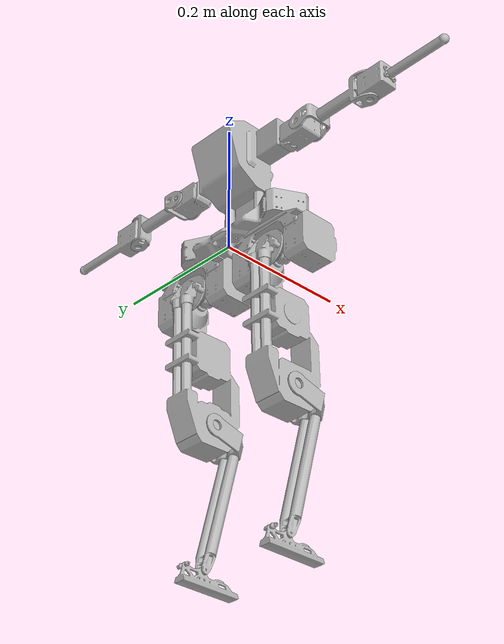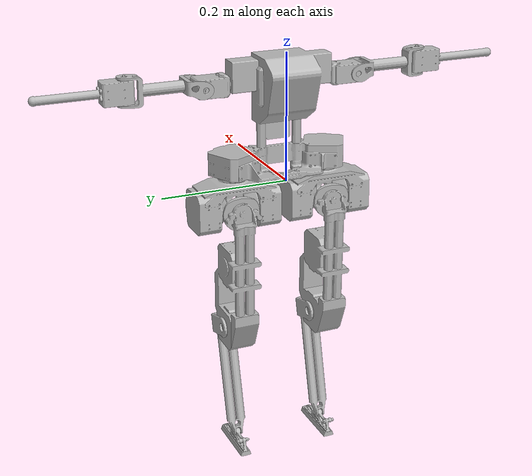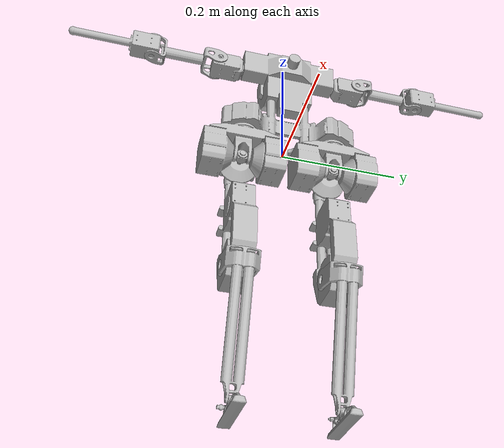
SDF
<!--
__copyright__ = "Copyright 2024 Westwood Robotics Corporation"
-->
<sdf version='1.6'>
  <model name='bruce'>

    <link name='base_link'>
      <inertial>
        <pose>0.022596 -0.000113 0.061401 0 -0 0</pose>
        <mass>1.31689</mass>
        <inertia>
          <ixx>0.0133543</ixx>
          <ixy>-3.36e-06</ixy>
          <ixz>0.00182725</ixz>
          <iyy>0.0102363</iyy>
          <iyz>-1.163e-05</iyz>
          <izz>0.005471</izz>
        </inertia>
      </inertial>
      <collision name='base_link_collision'>
        <pose>0 0 0 0 -0 0</pose>
        <geometry>
          <mesh>
            <scale>1 1 1</scale>
            <uri>model://bruce/meshes/base_link.STL</uri>
          </mesh>
        </geometry>
      </collision>
      <visual name='base_link_visual'>
        <pose>0 0 0 0 -0 0</pose>
        <geometry>
          <mesh>
            <scale>1 1 1</scale>
            <uri>model://bruce/meshes/base_link.STL</uri>
          </mesh>
        </geometry>
      </visual>
    </link>

    <joint name='hip_yaw_r' type='revolute'>
      <pose relative_to='base_link'>0.029216 -0.075856 -0.039765 0 0 -1.5708</pose>
      <parent>base_link</parent>
      <child>hip_yaw_link_r</child>
      <axis>
        <xyz>0 0 1</xyz>
        <limit>
          <lower>-3.1415</lower>
          <upper>3.1415</upper>
          <effort>1000</effort>
          <velocity>1000</velocity>
        </limit>
        <dynamics>
          <damping>0.002</damping>
          <spring_reference>0</spring_reference>
          <spring_stiffness>0</spring_stiffness>
        </dynamics>
      </axis>
    </joint>
    <link name='hip_yaw_link_r'>
      <pose relative_to='hip_yaw_r'>0 0 0 0 -0 0</pose>
      <inertial>
        <pose>3e-06 -0.000248 0.005224 0 -0 0</pose>
        <mass>0.637563</mass>
        <inertia>
          <ixx>0.00048541</ixx>
          <ixy>1.12e-06</ixy>
          <ixz>1.74e-06</ixz>
          <iyy>0.00161689</iyy>
          <iyz>-7.02e-06</iyz>
          <izz>0.00152129</izz>
        </inertia>
      </inertial>
      <collision name='hip_yaw_link_r_collision'>
        <pose>0 0 0 0 -0 0</pose>
        <geometry>
          <mesh>
            <scale>1 1 1</scale>
            <uri>model://bruce/meshes/hip_yaw_link_r.STL</uri>
          </mesh>
        </geometry>
      </collision>
      <visual name='hip_yaw_link_r_visual'>
        <pose>0 0 0 0 -0 0</pose>
        <geometry>
          <mesh>
            <scale>1 1 1</scale>
            <uri>model://bruce/meshes/hip_yaw_link_r.STL</uri>
          </mesh>
        </geometry>
      </visual>
    </link>
    <joint name='hip_roll_r' type='revolute'>
      <pose relative_to='hip_yaw_link_r'>0 0 0 -1.5708 1.5708 0</pose>
      <parent>hip_yaw_link_r</parent>
      <child>hip_roll_link_r</child>
      <axis>
        <xyz>0 0 1</xyz>
        <limit>
          <lower>-3.1415</lower>
          <upper>3.1415</upper>
          <effort>1000</effort>
          <velocity>1000</velocity>
        </limit>
        <dynamics>
          <damping>0.002</damping>
          <spring_reference>0</spring_reference>
          <spring_stiffness>0</spring_stiffness>
        </dynamics>
      </axis>
    </joint>
    <link name='hip_roll_link_r'>
      <pose relative_to='hip_roll_r'>0 0 0 0 -0 0</pose>
      <inertial>
        <pose>-0 0 7e-06 0 -0 0</pose>
        <mass>0.05</mass>
        <inertia>
          <ixx>1e-05</ixx>
          <ixy>1e-20</ixy>
          <ixz>-1e-20</ixz>
          <iyy>1e-05</iyy>
          <iyz>1e-20</iyz>
          <izz>1e-05</izz>
        </inertia>
      </inertial>
      <collision name='hip_roll_link_r_collision'>
        <pose>0 0 0 0 -0 0</pose>
        <geometry>
          <mesh>
            <scale>1 1 1</scale>
            <uri>model://bruce/meshes/hip_roll_link_r.STL</uri>
          </mesh>
        </geometry>
      </collision>
      <visual name='hip_roll_link_r_visual'>
        <pose>0 0 0 0 -0 0</pose>
        <geometry>
          <mesh>
            <scale>1 1 1</scale>
            <uri>model://bruce/meshes/hip_roll_link_r.STL</uri>
          </mesh>
        </geometry>
      </visual>
    </link>
    <joint name='hip_pitch_r' type='revolute'>
      <pose relative_to='hip_roll_link_r'>0 0 0 1.5708 -0 0</pose>
      <parent>hip_roll_link_r</parent>
      <child>hip_pitch_link_r</child>
      <axis>
        <xyz>0 0 1</xyz>
        <limit>
          <lower>-3.1415</lower>
          <upper>3.1415</upper>
          <effort>1000</effort>
          <velocity>1000</velocity>
        </limit>
        <dynamics>
          <damping>0.002</damping>
          <spring_reference>0</spring_reference>
          <spring_stiffness>0</spring_stiffness>
        </dynamics>
      </axis>
    </joint>
    <link name='hip_pitch_link_r'>
      <pose relative_to='hip_pitch_r'>0 0 0 0 -0 0</pose>
      <inertial>
        <pose>0.140714 -0.008682 0.001674 0 -0 0</pose>
        <mass>0.72849</mass>
        <inertia>
          <ixx>0.00050614</ixx>
          <ixy>-0.00065644</ixy>
          <ixz>0.00019343</ixz>
          <iyy>0.0179243</iyy>
          <iyz>1.68e-06</iyz>
          <izz>0.0181973</izz>
        </inertia>
      </inertial>
      <collision name='hip_pitch_link_r_collision'>
        <pose>0 0 0 0 -0 0</pose>
        <geometry>
          <mesh>
            <scale>1 1 1</scale>
            <uri>model://bruce/meshes/hip_pitch_link_r.STL</uri>
          </mesh>
        </geometry>
      </collision>
      <visual name='hip_pitch_link_r_visual'>
        <pose>0 0 0 0 -0 0</pose>
        <geometry>
          <mesh>
            <scale>1 1 1</scale>
            <uri>model://bruce/meshes/hip_pitch_link_r.STL</uri>
          </mesh>
        </geometry>
      </visual>
    </link>
    <joint name='knee_pitch_r' type='revolute'>
      <pose relative_to='hip_pitch_link_r'>0.204949 0 0 0 -0 0</pose>
      <parent>hip_pitch_link_r</parent>
      <child>knee_pitch_link_r</child>
      <axis>
        <xyz>0 0 1</xyz>
        <limit>
          <lower>-3.1415</lower>
          <upper>3.1415</upper>
          <effort>1000</effort>
          <velocity>1000</velocity>
        </limit>
        <dynamics>
          <damping>0.002</damping>
          <spring_reference>0</spring_reference>
          <spring_stiffness>0</spring_stiffness>
        </dynamics>
      </axis>
    </joint>
    <link name='knee_pitch_link_r'>
      <pose relative_to='knee_pitch_r'>0 0 0 0 -0 0</pose>
      <inertial>
        <pose>0.072931 0.017464 0.002164 0 -0 0</pose>
        <mass>0.0956654</mass>
        <inertia>
          <ixx>0.00010962</ixx>
          <ixy>5.276e-05</ixy>
          <ixz>1.568e-05</ixz>
          <iyy>0.00101941</iyy>
          <iyz>-6.68e-06</iyz>
          <izz>0.00108317</izz>
        </inertia>
      </inertial>
      <collision name='knee_pitch_link_r_collision'>
        <pose>0 0 0 0 -0 0</pose>
        <geometry>
          <mesh>
            <scale>1 1 1</scale>
            <uri>model://bruce/meshes/knee_pitch_link_r.STL</uri>
          </mesh>
        </geometry>
      </collision>
      <visual name='knee_pitch_link_r_visual'>
        <pose>0 0 0 0 -0 0</pose>
        <geometry>
          <mesh>
            <scale>1 1 1</scale>
            <uri>model://bruce/meshes/knee_pitch_link_r.STL</uri>
          </mesh>
        </geometry>
      </visual>
    </link>
    <joint name='ankle_pitch_r' type='revolute'>
      <pose relative_to='knee_pitch_link_r'>0.199881 0 0 0 -0 0</pose>
      <parent>knee_pitch_link_r</parent>
      <child>ankle_pitch_link_r</child>
      <axis>
        <xyz>0 0 1</xyz>
        <limit>
          <lower>-3.1415</lower>
          <upper>3.1415</upper>
          <effort>1000</effort>
          <velocity>1000</velocity>
        </limit>
        <dynamics>
          <damping>0.002</damping>
          <spring_reference>0</spring_reference>
          <spring_stiffness>0</spring_stiffness>
        </dynamics>
      </axis>
    </joint>
    <link name='ankle_pitch_link_r'>
      <pose relative_to='ankle_pitch_r'>0 0 0 0 -0 0</pose>
      <inertial>
        <pose>0.012078 0.001975 0.000295 0 -0 0</pose>
        <mass>0.0276265</mass>
        <inertia>
          <ixx>2.043e-05</ixx>
          <ixy>2.87e-06</ixy>
          <ixz>-3e-08</ixz>
          <iyy>6.2e-06</iyy>
          <iyz>-2.4e-07</iyz>
          <izz>2.588e-05</izz>
        </inertia>
      </inertial>
      <collision name='ankle_pitch_link_r_collision'>
        <pose>0 0 0 0 -0 0</pose>
        <geometry>
          <mesh>
            <scale>1 1 1</scale>
            <uri>model://bruce/meshes/ankle_pitch_link_r.STL</uri>
          </mesh>
        </geometry>
      </collision>
      <collision name='toe_right_collision'>
        <pose>0.0250 0.05 0 0 -0 0</pose>
        <geometry>
          <sphere>
            <radius>0.005</radius>
          </sphere>
        </geometry>
        <surface>
          <friction>
            <ode>
              <mu>10</mu>
              <mu2>10</mu2>
            </ode>
          </friction>
          <contact>
            <ode>
              <min_depth>0.003</min_depth>
              <kp>1e7</kp>
              <kd>100</kd>
            </ode>
          </contact>
        </surface>
      </collision>
      <sensor name='0' type='contact'>
        <plugin name="right_toe_contact_plugin" filename="bruce_gazebo_contact.so"/>
        <contact>
          <collision>toe_right_collision</collision>
        </contact>
      </sensor>
      <collision name='heel_right_collision'>
        <pose>0.0250 -0.035 0 0 -0 0</pose>
        <geometry>
          <sphere>
            <radius>0.005</radius>
          </sphere>
        </geometry>
        <surface>
          <friction>
            <ode>
              <mu>10</mu>
              <mu2>10</mu2>
            </ode>
          </friction>
          <contact>
            <ode>
              <min_depth>0.003</min_depth>
              <kp>1e7</kp>
              <kd>100</kd>
            </ode>
          </contact>
        </surface>
      </collision>
      <sensor name='1' type='contact'>
        <plugin name="right_heel_contact_plugin" filename="bruce_gazebo_contact.so"/>
        <contact>
          <collision>heel_right_collision</collision>
        </contact>
      </sensor>
      <visual name='ankle_pitch_link_r_visual'>
        <pose>0 0 0 0 -0 0</pose>
        <geometry>
          <mesh>
            <scale>1 1 1</scale>
            <uri>model://bruce/meshes/ankle_pitch_link_r.STL</uri>
          </mesh>
        </geometry>
      </visual>
    </link>

    <joint name='hip_yaw_l' type='revolute'>
      <pose relative_to='base_link'>0.029216 0.075856 -0.039765 0 0 -1.5708</pose>
      <parent>base_link</parent>
      <child>hip_yaw_link_l</child>
      <axis>
        <xyz>0 0 1</xyz>
        <limit>
          <lower>-3.1415</lower>
          <upper>3.1415</upper>
          <effort>1000</effort>
          <velocity>1000</velocity>
        </limit>
        <dynamics>
          <damping>0.002</damping>
          <spring_reference>0</spring_reference>
          <spring_stiffness>0</spring_stiffness>
        </dynamics>
      </axis>
    </joint>
    <link name='hip_yaw_link_l'>
      <pose relative_to='hip_yaw_l'>0 0 0 0 -0 0</pose>
      <inertial>
        <pose>0 -0.000208 0.00528 0 -0 0</pose>
        <mass>0.637386</mass>
        <inertia>
          <ixx>0.0004852</ixx>
          <ixy>0</ixy>
          <ixz>-1.6e-07</ixz>
          <iyy>0.0016181</iyy>
          <iyz>-7.5e-06</iyz>
          <izz>0.00152105</izz>
        </inertia>
      </inertial>
      <collision name='hip_yaw_link_l_collision'>
        <pose>0 0 0 0 -0 0</pose>
        <geometry>
          <mesh>
            <scale>1 1 1</scale>
            <uri>model://bruce/meshes/hip_yaw_link_l.STL</uri>
          </mesh>
        </geometry>
      </collision>
      <visual name='hip_yaw_link_l_visual'>
        <pose>0 0 0 0 -0 0</pose>
        <geometry>
          <mesh>
            <scale>1 1 1</scale>
            <uri>model://bruce/meshes/hip_yaw_link_l.STL</uri>
          </mesh>
        </geometry>
      </visual>
    </link>
    <joint name='hip_roll_l' type='revolute'>
      <pose relative_to='hip_yaw_link_l'>0 0 0 -1.57079 1.5708 0</pose>
      <parent>hip_yaw_link_l</parent>
      <child>hip_roll_link_l</child>
      <axis>
        <xyz>0 0 1</xyz>
        <limit>
          <lower>-3.1415</lower>
          <upper>3.1415</upper>
          <effort>1000</effort>
          <velocity>1000</velocity>
        </limit>
        <dynamics>
          <damping>0.002</damping>
          <spring_reference>0</spring_reference>
          <spring_stiffness>0</spring_stiffness>
        </dynamics>
      </axis>
    </joint>
    <link name='hip_roll_link_l'>
      <pose relative_to='hip_roll_l'>0 0 0 0 -0 0</pose>
      <inertial>
        <pose>-0 0 7e-06 0 -0 0</pose>
        <mass>0.05</mass>
        <inertia>
          <ixx>1e-05</ixx>
          <ixy>1e-20</ixy>
          <ixz>-1e-20</ixz>
          <iyy>1e-05</iyy>
          <iyz>1e-20</iyz>
          <izz>1e-05</izz>
        </inertia>
      </inertial>
      <collision name='hip_roll_link_l_collision'>
        <pose>0 0 0 0 -0 0</pose>
        <geometry>
          <mesh>
            <scale>1 1 1</scale>
            <uri>model://bruce/meshes/hip_roll_link_l.STL</uri>
          </mesh>
        </geometry>
      </collision>
      <visual name='hip_roll_link_l_visual'>
        <pose>0 0 0 0 -0 0</pose>
        <geometry>
          <mesh>
            <scale>1 1 1</scale>
            <uri>model://bruce/meshes/hip_roll_link_l.STL</uri>
          </mesh>
        </geometry>
      </visual>
    </link>
    <joint name='hip_pitch_l' type='revolute'>
      <pose relative_to='hip_roll_link_l'>0 0 0 1.5708 -0 0</pose>
      <parent>hip_roll_link_l</parent>
      <child>hip_pitch_link_l</child>
      <axis>
        <xyz>0 0 1</xyz>
        <limit>
          <lower>-3.1415</lower>
          <upper>3.1415</upper>
          <effort>1000</effort>
          <velocity>1000</velocity>
        </limit>
        <dynamics>
          <damping>0.002</damping>
          <spring_reference>0</spring_reference>
          <spring_stiffness>0</spring_stiffness>
        </dynamics>
      </axis>
    </joint>
    <link name='hip_pitch_link_l'>
      <pose relative_to='hip_pitch_l'>0 0 0 0 -0 0</pose>
      <inertial>
        <pose>0.142447 -0.008321 0.000493 0 -0 0</pose>
        <mass>0.720628</mass>
        <inertia>
          <ixx>0.00048935</ixx>
          <ixy>-0.00066556</ixy>
          <ixz>-0.0001932</ixz>
          <iyy>0.017929</iyy>
          <iyz>3.2e-07</iyz>
          <izz>0.0181927</izz>
        </inertia>
      </inertial>
      <collision name='hip_pitch_link_l_collision'>
        <pose>0 0 0 0 -0 0</pose>
        <geometry>
          <mesh>
            <scale>1 1 1</scale>
            <uri>model://bruce/meshes/hip_pitch_link_l.STL</uri>
          </mesh>
        </geometry>
      </collision>
      <visual name='hip_pitch_link_l_visual'>
        <pose>0 0 0 0 -0 0</pose>
        <geometry>
          <mesh>
            <scale>1 1 1</scale>
            <uri>model://bruce/meshes/hip_pitch_link_l.STL</uri>
          </mesh>
        </geometry>
      </visual>
    </link>
    <joint name='knee_pitch_l' type='revolute'>
      <pose relative_to='hip_pitch_link_l'>0.204949 0 0 0 -0 0</pose>
      <parent>hip_pitch_link_l</parent>
      <child>knee_pitch_link_l</child>
      <axis>
        <xyz>0 0 1</xyz>
        <limit>
          <lower>-3.1415</lower>
          <upper>3.1415</upper>
          <effort>1000</effort>
          <velocity>1000</velocity>
        </limit>
        <dynamics>
          <damping>0.002</damping>
          <spring_reference>0</spring_reference>
          <spring_stiffness>0</spring_stiffness>
        </dynamics>
      </axis>
    </joint>
    <link name='knee_pitch_link_l'>
      <pose relative_to='knee_pitch_l'>0 0 0 0 -0 0</pose>
      <inertial>
        <pose>0.0731 0.01781 -0.002198 0 -0 0</pose>
        <mass>0.0952654</mass>
        <inertia>
          <ixx>0.00010799</ixx>
          <ixy>5.259e-05</ixy>
          <ixz>-1.742e-05</ixz>
          <iyy>0.00101705</iyy>
          <iyz>6.07e-06</iyz>
          <izz>0.0010792</izz>
        </inertia>
      </inertial>
      <collision name='knee_pitch_link_l_collision'>
        <pose>0 0 0 0 -0 0</pose>
        <geometry>
          <mesh>
            <scale>1 1 1</scale>
            <uri>model://bruce/meshes/knee_pitch_link_l.STL</uri>
          </mesh>
        </geometry>
      </collision>
      <visual name='knee_pitch_link_l_visual'>
        <pose>0 0 0 0 -0 0</pose>
        <geometry>
          <mesh>
            <scale>1 1 1</scale>
            <uri>model://bruce/meshes/knee_pitch_link_l.STL</uri>
          </mesh>
        </geometry>
      </visual>
    </link>
    <joint name='ankle_pitch_l' type='revolute'>
      <pose relative_to='knee_pitch_link_l'>0.199881 0 0 0 -0 0</pose>
      <parent>knee_pitch_link_l</parent>
      <child>ankle_pitch_link_l</child>
      <axis>
        <xyz>0 0 1</xyz>
        <limit>
          <lower>-3.1415</lower>
          <upper>3.1415</upper>
          <effort>1000</effort>
          <velocity>1000</velocity>
        </limit>
        <dynamics>
          <damping>0.002</damping>
          <spring_reference>0</spring_reference>
          <spring_stiffness>0</spring_stiffness>
        </dynamics>
      </axis>
    </joint>
    <link name='ankle_pitch_link_l'>
      <pose relative_to='ankle_pitch_l'>0 0 0 0 -0 0</pose>
      <inertial>
        <pose>0.01234 0.00253 -0.000304 0 -0 0</pose>
        <mass>0.0274829</mass>
        <inertia>
          <ixx>2.042e-05</ixx>
          <ixy>2.91e-06</ixy>
          <ixz>3e-08</ixz>
          <iyy>6.27e-06</iyy>
          <iyz>2.4e-07</iyz>
          <izz>2.602e-05</izz>
        </inertia>
      </inertial>
      <collision name='ankle_pitch_link_l_collision'>
        <pose>0 0 0 0 -0 0</pose>
        <geometry>
          <mesh>
            <scale>1 1 1</scale>
            <uri>model://bruce/meshes/ankle_pitch_link_l.STL</uri>
          </mesh>
        </geometry>
      </collision>
      <collision name='toe_left_collision'>
        <pose>0.0250 0.05 0 0 -0 0</pose>
        <geometry>
          <sphere>
            <radius>0.005</radius>
          </sphere>
        </geometry>
        <surface>
          <friction>
            <ode>
              <mu>10</mu>
              <mu2>10</mu2>
            </ode>
          </friction>
          <contact>
            <ode>
              <min_depth>0.003</min_depth>
              <kp>1e7</kp>
              <kd>100</kd>
            </ode>
          </contact>
        </surface>
      </collision>
      <sensor name='2' type='contact'>
        <plugin name="left_toe_contact_plugin" filename="bruce_gazebo_contact.so"/>
        <contact>
          <collision>toe_left_collision</collision>
        </contact>
      </sensor>
      <collision name='heel_left_collision'>
        <pose>0.0250 -0.035 0 0 -0 0</pose>
        <geometry>
          <sphere>
            <radius>0.005</radius>
          </sphere>
        </geometry>
        <surface>
          <friction>
            <ode>
              <mu>10</mu>
              <mu2>10</mu2>
            </ode>
          </friction>
          <contact>
            <ode>
              <min_depth>0.003</min_depth>
              <kp>1e7</kp>
              <kd>100</kd>
            </ode>
          </contact>
        </surface>
      </collision>
      <sensor name='3' type='contact'>
        <plugin name="left_heel_contact_plugin" filename="bruce_gazebo_contact.so"/>
        <contact>
          <collision>heel_left_collision</collision>
        </contact>
      </sensor>
      <visual name='ankle_pitch_link_l_visual'>
        <pose>0 0 0 0 -0 0</pose>
        <geometry>
          <mesh>
            <scale>1 1 1</scale>
            <uri>model://bruce/meshes/ankle_pitch_link_l.STL</uri>
          </mesh>
        </geometry>
      </visual>
    </link>

    <joint name='shoulder_pitch_r' type='revolute'>
      <pose relative_to='base_link'>0.029216 -0.12375 0.152985 1.5708 -1.5708 0</pose>
      <parent>base_link</parent>
      <child>shoulder_pitch_link_r</child>
      <axis>
        <xyz>0 0 1</xyz>
        <limit>
          <lower>-3.1415</lower>
          <upper>3.1415</upper>
          <effort>1000</effort>
          <velocity>1000</velocity>
        </limit>
        <dynamics>
          <damping>0.002</damping>
          <spring_reference>0</spring_reference>
          <spring_stiffness>0</spring_stiffness>
        </dynamics>
      </axis>
    </joint>
    <link name='shoulder_pitch_link_r'>
      <pose relative_to='shoulder_pitch_r'>0 0 0 0 -0 0</pose>
      <inertial>
        <pose>0 -0.000383 -0.014137 0 -0 0</pose>
        <mass>0.0493169</mass>
        <inertia>
          <ixx>2.507e-05</ixx>
          <ixy>0</ixy>
          <ixz>0</ixz>
          <iyy>2.403e-05</iyy>
          <iyz>1.8e-07</iyz>
          <izz>8.32e-06</izz>
        </inertia>
      </inertial>
      <collision name='shoulder_pitch_link_r_collision'>
        <pose>0 0 0 0 -0 0</pose>
        <geometry>
          <mesh>
            <scale>1 1 1</scale>
            <uri>model://bruce/meshes/shoulder_pitch_link_r.STL</uri>
          </mesh>
        </geometry>
      </collision>
      <visual name='shoulder_pitch_link_r_visual'>
        <pose>0 0 0 0 -0 0</pose>
        <geometry>
          <mesh>
            <scale>1 1 1</scale>
            <uri>model://bruce/meshes/shoulder_pitch_link_r.STL</uri>
          </mesh>
        </geometry>
      </visual>
    </link>
    <joint name='shoulder_roll_r' type='revolute'>
      <pose relative_to='shoulder_pitch_link_r'>0 0 0 1.5708 -1.5708 0</pose>
      <parent>shoulder_pitch_link_r</parent>
      <child>shoulder_roll_link_r</child>
      <axis>
        <xyz>0 0 1</xyz>
        <limit>
          <lower>-3.1415</lower>
          <upper>3.1415</upper>
          <effort>1000</effort>
          <velocity>1000</velocity>
        </limit>
        <dynamics>
          <damping>0.002</damping>
          <spring_reference>0</spring_reference>
          <spring_stiffness>0</spring_stiffness>
        </dynamics>
      </axis>
    </joint>
    <link name='shoulder_roll_link_r'>
      <pose relative_to='shoulder_roll_r'>0 0 0 0 -0 0</pose>
      <inertial>
        <pose>0.057094 -0.004195 0.000937 0 -0 0</pose>
        <mass>0.024</mass>
        <inertia>
          <ixx>7.75e-06</ixx>
          <ixy>-6.9e-06</ixy>
          <ixz>2.62e-06</ixz>
          <iyy>0.00012556</iyy>
          <iyz>-1.1e-07</iyz>
          <izz>0.00012619</izz>
        </inertia>
      </inertial>
      <collision name='shoulder_roll_link_r_collision'>
        <pose>0 0 0 0 -0 0</pose>
        <geometry>
          <mesh>
            <scale>1 1 1</scale>
            <uri>model://bruce/meshes/shoulder_roll_link_r.STL</uri>
          </mesh>
        </geometry>
      </collision>
      <visual name='shoulder_roll_link_r_visual'>
        <pose>0 0 0 0 -0 0</pose>
        <geometry>
          <mesh>
            <scale>1 1 1</scale>
            <uri>model://bruce/meshes/shoulder_roll_link_r.STL</uri>
          </mesh>
        </geometry>
      </visual>
    </link>
    <joint name='elbow_pitch_r' type='revolute'>
      <pose relative_to='shoulder_roll_link_r'>0.1146 -0.005 0.005 1.5708 -0 0</pose>
      <parent>shoulder_roll_link_r</parent>
      <child>elbow_pitch_link_r</child>
      <axis>
        <xyz>0 0 1</xyz>
        <limit>
          <lower>-3.1415</lower>
          <upper>3.1415</upper>
          <effort>1000</effort>
          <velocity>1000</velocity>
        </limit>
        <dynamics>
          <damping>0.002</damping>
          <spring_reference>0</spring_reference>
          <spring_stiffness>0</spring_stiffness>
        </dynamics>
      </axis>
    </joint>
    <link name='elbow_pitch_link_r'>
      <pose relative_to='elbow_pitch_r'>0 0 0 0 -0 0</pose>
      <inertial>
        <pose>0.021788 0 0.00036 0 -0 0</pose>
        <mass>0.0524404</mass>
        <inertia>
          <ixx>7.53e-06</ixx>
          <ixy>0</ixy>
          <ixz>1.8e-07</ixz>
          <iyy>7.261e-05</iyy>
          <iyz>0</iyz>
          <izz>7.103e-05</izz>
        </inertia>
      </inertial>
      <collision name='elbow_pitch_link_r_collision'>
        <pose>0 0 0 0 -0 0</pose>
        <geometry>
          <mesh>
            <scale>1 1 1</scale>
            <uri>model://bruce/meshes/elbow_pitch_link_r.STL</uri>
          </mesh>
        </geometry>
      </collision>
      <visual name='elbow_pitch_link_r_visual'>
        <pose>0 0 0 0 -0 0</pose>
        <geometry>
          <mesh>
            <scale>1 1 1</scale>
            <uri>model://bruce/meshes/elbow_pitch_link_r.STL</uri>
          </mesh>
        </geometry>
      </visual>
    </link>

    <joint name='shoulder_pitch_l' type='revolute'>
      <pose relative_to='base_link'>0.029216 0.12375 0.152985 -1.5708 1.5708 0</pose>
      <parent>base_link</parent>
      <child>shoulder_pitch_link_l</child>
      <axis>
        <xyz>0 0 1</xyz>
        <limit>
          <lower>-3.1415</lower>
          <upper>3.1415</upper>
          <effort>1000</effort>
          <velocity>1000</velocity>
        </limit>
        <dynamics>
          <damping>0.002</damping>
          <spring_reference>0</spring_reference>
          <spring_stiffness>0</spring_stiffness>
        </dynamics>
      </axis>
    </joint>
    <link name='shoulder_pitch_link_l'>
      <pose relative_to='shoulder_pitch_l'>0 0 0 0 -0 0</pose>
      <inertial>
        <pose>0 0.000383 -0.014137 0 -0 0</pose>
        <mass>0.0493169</mass>
        <inertia>
          <ixx>2.507e-05</ixx>
          <ixy>0</ixy>
          <ixz>0</ixz>
          <iyy>2.403e-05</iyy>
          <iyz>-1.8e-07</iyz>
          <izz>8.32e-06</izz>
        </inertia>
      </inertial>
      <collision name='shoulder_pitch_link_l_collision'>
        <pose>0 0 0 0 -0 0</pose>
        <geometry>
          <mesh>
            <scale>1 1 1</scale>
            <uri>model://bruce/meshes/shoulder_pitch_link_l.STL</uri>
          </mesh>
        </geometry>
      </collision>
      <visual name='shoulder_pitch_link_l_visual'>
        <pose>0 0 0 0 -0 0</pose>
        <geometry>
          <mesh>
            <scale>1 1 1</scale>
            <uri>model://bruce/meshes/shoulder_pitch_link_l.STL</uri>
          </mesh>
        </geometry>
      </visual>
    </link>
    <joint name='shoulder_roll_l' type='revolute'>
      <pose relative_to='shoulder_pitch_link_l'>0 0 0 1.5708 -1.5708 0</pose>
      <parent>shoulder_pitch_link_l</parent>
      <child>shoulder_roll_link_l</child>
      <axis>
        <xyz>0 0 1</xyz>
        <limit>
          <lower>-3.1415</lower>
          <upper>3.1415</upper>
          <effort>1000</effort>
          <velocity>1000</velocity>
        </limit>
        <dynamics>
          <damping>0.002</damping>
          <spring_reference>0</spring_reference>
          <spring_stiffness>0</spring_stiffness>
        </dynamics>
      </axis>
    </joint>
    <link name='shoulder_roll_link_l'>
      <pose relative_to='shoulder_roll_l'>0 0 0 0 -0 0</pose>
      <inertial>
        <pose>0.057094 0.004195 0.000942 0 -0 0</pose>
        <mass>0.0313652</mass>
        <inertia>
          <ixx>1.013e-05</ixx>
          <ixy>9.02e-06</ixy>
          <ixz>3.42e-06</ixz>
          <iyy>0.00016409</iyy>
          <iyz>1.5e-07</iyz>
          <izz>0.00016491</izz>
        </inertia>
      </inertial>
      <collision name='shoulder_roll_link_l_collision'>
        <pose>0 0 0 0 -0 0</pose>
        <geometry>
          <mesh>
            <scale>1 1 1</scale>
            <uri>model://bruce/meshes/shoulder_roll_link_l.STL</uri>
          </mesh>
        </geometry>
      </collision>
      <visual name='shoulder_roll_link_l_visual'>
        <pose>0 0 0 0 -0 0</pose>
        <geometry>
          <mesh>
            <scale>1 1 1</scale>
            <uri>model://bruce/meshes/shoulder_roll_link_l.STL</uri>
          </mesh>
        </geometry>
      </visual>
    </link>
    <joint name='elbow_pitch_l' type='revolute'>
      <pose relative_to='shoulder_roll_link_l'>0.1146 0.005 0.005 -1.5708 0 0</pose>
      <parent>shoulder_roll_link_l</parent>
      <child>elbow_pitch_link_l</child>
      <axis>
        <xyz>0 0 1</xyz>
        <limit>
          <lower>-3.1415</lower>
          <upper>3.1415</upper>
          <effort>1000</effort>
          <velocity>1000</velocity>
        </limit>
        <dynamics>
          <damping>0.002</damping>
          <spring_reference>0</spring_reference>
          <spring_stiffness>0</spring_stiffness>
        </dynamics>
      </axis>
    </joint>
    <link name='elbow_pitch_link_l'>
      <pose relative_to='elbow_pitch_l'>0 0 0 0 -0 0</pose>
      <inertial>
        <pose>0.021788 0 0.00036 0 -0 0</pose>
        <mass>0.0524404</mass>
        <inertia>
          <ixx>7.53e-06</ixx>
          <ixy>0</ixy>
          <ixz>1.8e-07</ixz>
          <iyy>7.261e-05</iyy>
          <iyz>0</iyz>
          <izz>7.103e-05</izz>
        </inertia>
      </inertial>
      <collision name='elbow_pitch_link_l_collision'>
        <pose>0 0 0 0 -0 0</pose>
        <geometry>
          <mesh>
            <scale>1 1 1</scale>
            <uri>model://bruce/meshes/elbow_pitch_link_l.STL</uri>
          </mesh>
        </geometry>
      </collision>
      <visual name='elbow_pitch_link_l_visual'>
        <pose>0 0 0 0 -0 0</pose>
        <geometry>
          <mesh>
            <scale>1 1 1</scale>
            <uri>model://bruce/meshes/elbow_pitch_link_l.STL</uri>
          </mesh>
        </geometry>
      </visual>
    </link>

  </model>
</sdf>
